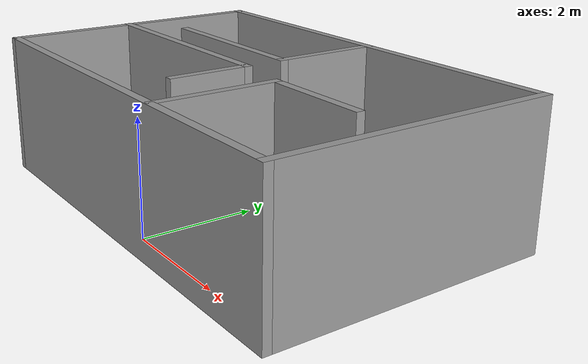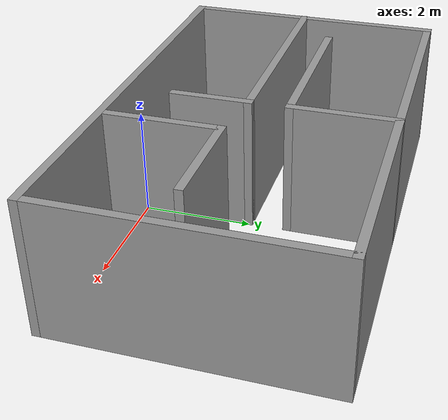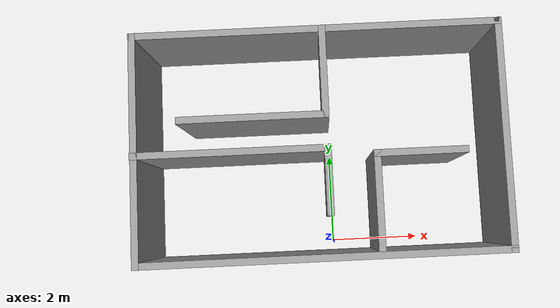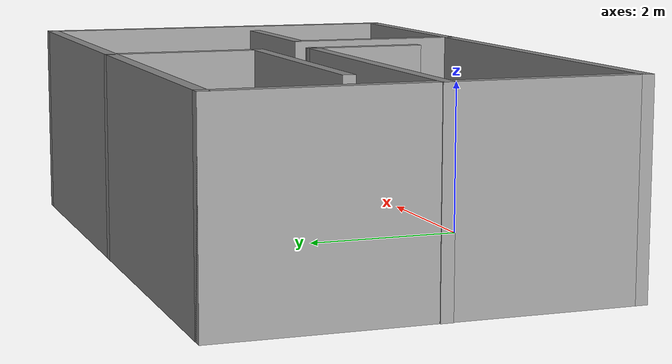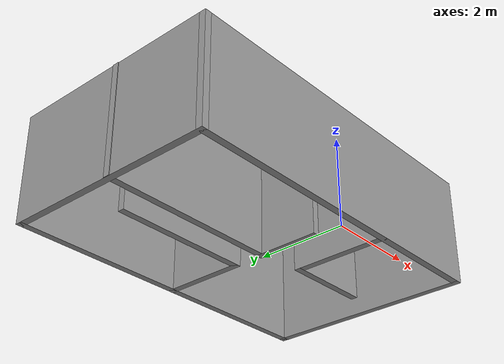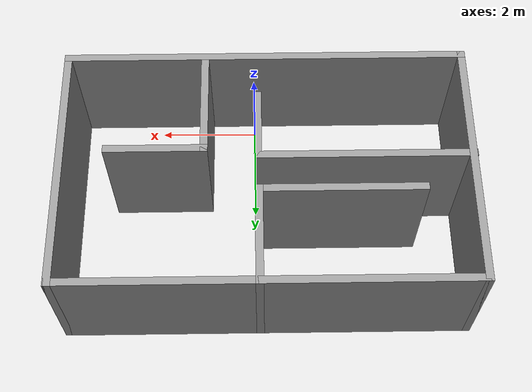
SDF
<?xml version='1.0'?>
<sdf version='1.7'>
  <model name='room'>
    <pose>-0.231662 2.13015 0 0 -0 0</pose>
    <link name='Wall_10'>
      <collision name='Wall_10_Collision'>
        <geometry>
          <box>
            <size>8 0.15 2.5</size>
          </box>
        </geometry>
        <pose>0 0 1.25 0 -0 0</pose>
      </collision>
      <visual name='Wall_10_Visual'>
        <pose>0 0 1.25 0 -0 0</pose>
        <geometry>
          <box>
            <size>8 0.15 2.5</size>
          </box>
        </geometry>
        <material>
          <script>
            <uri>file://media/materials/scripts/gazebo.material</uri>
            <name>Gazebo/Grey</name>
          </script>
          <ambient>1 1 1 1</ambient>
        </material>
        <meta>
          <layer>0</layer>
        </meta>
      </visual>
      <pose>0.006612 2.425 0 0 -0 0</pose>
    </link>
    <link name='Wall_12'>
      <collision name='Wall_12_Collision'>
        <geometry>
          <box>
            <size>5 0.15 2.5</size>
          </box>
        </geometry>
        <pose>0 0 1.25 0 -0 0</pose>
      </collision>
      <visual name='Wall_12_Visual'>
        <pose>0 0 1.25 0 -0 0</pose>
        <geometry>
          <box>
            <size>5 0.15 2.5</size>
          </box>
        </geometry>
        <material>
          <script>
            <uri>file://media/materials/scripts/gazebo.material</uri>
            <name>Gazebo/Grey</name>
          </script>
          <ambient>1 1 1 1</ambient>
        </material>
        <meta>
          <layer>0</layer>
        </meta>
      </visual>
      <pose>3.93161 0 0 0 -0 -1.5708</pose>
    </link>
    <link name='Wall_13'>
      <collision name='Wall_13_Collision'>
        <geometry>
          <box>
            <size>8 0.15 2.5</size>
          </box>
        </geometry>
        <pose>0 0 1.25 0 -0 0</pose>
      </collision>
      <visual name='Wall_13_Visual'>
        <pose>0 0 1.25 0 -0 0</pose>
        <geometry>
          <box>
            <size>8 0.15 2.5</size>
          </box>
        </geometry>
        <material>
          <script>
            <uri>file://media/materials/scripts/gazebo.material</uri>
            <name>Gazebo/Grey</name>
          </script>
          <ambient>1 1 1 1</ambient>
        </material>
        <meta>
          <layer>0</layer>
        </meta>
      </visual>
      <pose>0.006612 -2.425 0 0 -0 3.14159</pose>
    </link>
    <link name='Wall_14'>
      <collision name='Wall_14_Collision'>
        <geometry>
          <box>
            <size>5 0.15 2.5</size>
          </box>
        </geometry>
        <pose>0 0 1.25 0 -0 0</pose>
      </collision>
      <visual name='Wall_14_Visual'>
        <pose>0 0 1.25 0 -0 0</pose>
        <geometry>
          <box>
            <size>5 0.15 2.5</size>
          </box>
        </geometry>
        <material>
          <script>
            <uri>file://media/materials/scripts/gazebo.material</uri>
            <name>Gazebo/Grey</name>
          </script>
          <ambient>1 1 1 1</ambient>
        </material>
        <meta>
          <layer>0</layer>
        </meta>
      </visual>
      <pose>-3.91839 0 0 0 -0 1.5708</pose>
    </link>
    <link name='Wall_16'>
      <collision name='Wall_16_Collision'>
        <geometry>
          <box>
            <size>2 0.15 2.5</size>
          </box>
        </geometry>
        <pose>0 0 1.25 0 -0 0</pose>
      </collision>
      <visual name='Wall_16_Visual'>
        <pose>0 0 1.25 0 -0 0</pose>
        <geometry>
          <box>
            <size>2 0.15 2.5</size>
          </box>
        </geometry>
        <material>
          <script>
            <uri>file://media/materials/scripts/gazebo.material</uri>
            <name>Gazebo/Grey</name>
          </script>
          <ambient>1 1 1 1</ambient>
        </material>
        <meta>
          <layer>0</layer>
        </meta>
      </visual>
      <pose>0.154912 1.5 0 0 -0 -1.5708</pose>
    </link>
    <link name='Wall_17'>
      <collision name='Wall_17_Collision'>
        <geometry>
          <box>
            <size>3.25 0.15 2.5</size>
          </box>
        </geometry>
        <pose>0 0 1.25 0 -0 0</pose>
      </collision>
      <visual name='Wall_17_Visual'>
        <pose>0 0 1.25 0 -0 0</pose>
        <geometry>
          <box>
            <size>3.25 0.15 2.5</size>
          </box>
        </geometry>
        <material>
          <script>
            <uri>file://media/materials/scripts/gazebo.material</uri>
            <name>Gazebo/Grey</name>
          </script>
          <ambient>1 1 1 1</ambient>
        </material>
        <meta>
          <layer>0</layer>
        </meta>
      </visual>
      <pose>-1.39509 0.575 0 0 -0 3.14159</pose>
    </link>
    <link name='Wall_19'>
      <collision name='Wall_19_Collision'>
        <geometry>
          <box>
            <size>4.25 0.15 2.5</size>
          </box>
        </geometry>
        <pose>0 0 1.25 0 -0 0</pose>
      </collision>
      <visual name='Wall_19_Visual'>
        <pose>0 0 1.25 0 -0 0</pose>
        <geometry>
          <box>
            <size>4.25 0.15 2.5</size>
          </box>
        </geometry>
        <material>
          <script>
            <uri>file://media/materials/scripts/gazebo.material</uri>
            <name>Gazebo/Grey</name>
          </script>
          <ambient>1 1 1 1</ambient>
        </material>
        <meta>
          <layer>0</layer>
        </meta>
      </visual>
      <pose>-1.88161 -0.14065 0 0 -0 0</pose>
    </link>
    <link name='Wall_20'>
      <collision name='Wall_20_Collision'>
        <geometry>
          <box>
            <size>1.5 0.15 2.5</size>
          </box>
        </geometry>
        <pose>0 0 1.25 0 -0 0</pose>
      </collision>
      <visual name='Wall_20_Visual'>
        <pose>0 0 1.25 0 -0 0</pose>
        <geometry>
          <box>
            <size>1.5 0.15 2.5</size>
          </box>
        </geometry>
        <material>
          <script>
            <uri>file://media/materials/scripts/gazebo.material</uri>
            <name>Gazebo/Grey</name>
          </script>
          <ambient>1 1 1 1</ambient>
        </material>
        <meta>
          <layer>0</layer>
        </meta>
      </visual>
      <pose>0.168387 -0.81565 0 0 -0 -1.5708</pose>
    </link>
    <link name='Wall_22'>
      <collision name='Wall_22_Collision'>
        <geometry>
          <box>
            <size>2.25 0.15 2.5</size>
          </box>
        </geometry>
        <pose>0 0 1.25 0 -0 0</pose>
      </collision>
      <visual name='Wall_22_Visual'>
        <pose>0 0 1.25 0 -0 0</pose>
        <geometry>
          <box>
            <size>2.25 0.15 2.5</size>
          </box>
        </geometry>
        <material>
          <script>
            <uri>file://media/materials/scripts/gazebo.material</uri>
            <name>Gazebo/Grey</name>
          </script>
          <ambient>1 1 1 1</ambient>
        </material>
        <meta>
          <layer>0</layer>
        </meta>
      </visual>
      <pose>1.19969 -1.35213 0 0 -0 1.5708</pose>
    </link>
    <link name='Wall_23'>
      <collision name='Wall_23_Collision'>
        <geometry>
          <box>
            <size>2 0.15 2.5</size>
          </box>
        </geometry>
        <pose>0 0 1.25 0 -0 0</pose>
      </collision>
      <visual name='Wall_23_Visual'>
        <pose>0 0 1.25 0 -0 0</pose>
        <geometry>
          <box>
            <size>2 0.15 2.5</size>
          </box>
        </geometry>
        <material>
          <script>
            <uri>file://media/materials/scripts/gazebo.material</uri>
            <name>Gazebo/Grey</name>
          </script>
          <ambient>1 1 1 1</ambient>
        </material>
        <meta>
          <layer>0</layer>
        </meta>
      </visual>
      <pose>2.12469 -0.302125 0 0 -0 0</pose>
    </link>
    <static>1</static>
  </model>
</sdf>
